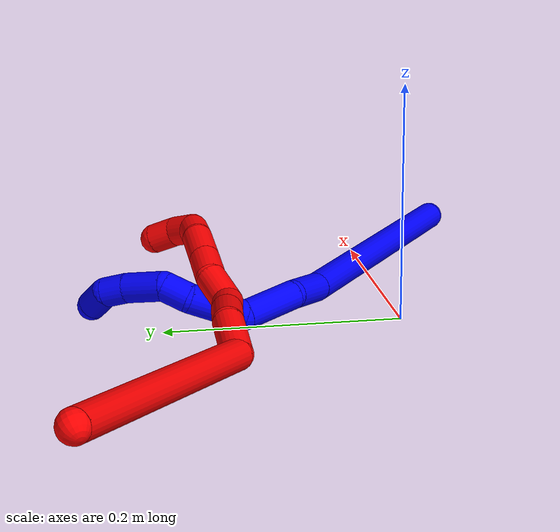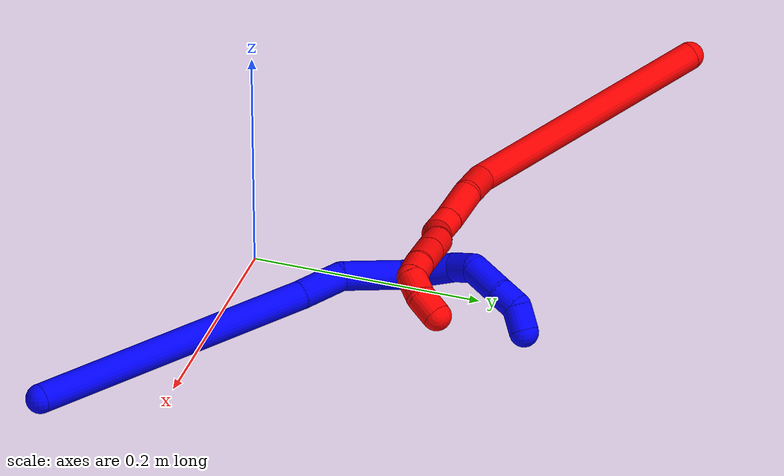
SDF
<sdf version="1.7">
 <world name="default">
  <plugin name="TubeGeneratorPlugin" filename="libtube_generator_plugin.so"/>
  <model name="photoneo_s_sensor">
   <static>1</static>
   <pose>0 0 2 1.57079 1.57079 3.14159</pose>
   <link name="link">
    <inertial><mass>0.1</mass></inertial>
    <sensor name="sensor" type="depth">
     <update_rate>30</update_rate>
     <camera>
      <horizontal_fov>1.22</horizontal_fov>
      <image><width>1920</width><height>1200</height><format>B8G8R8</format></image>
      <clip><near>0.1</near><far>4</far></clip>
      <depth_camera><output>points</output></depth_camera>
     </camera>
     <plugin name="camera_plugin" filename="libgazebo_ros_depth_camera.so">
      <baseline>0.2</baseline>
      <alwaysOn>1</alwaysOn>
      <updateRate>0.0</updateRate>
      <cameraName>camera_ir</cameraName>
      <imageTopicName>/camera/color/image_raw</imageTopicName>
      <cameraInfoTopicName>/camera/color/camera_info</cameraInfoTopicName>
      <depthImageTopicName>/camera/depth/image_raw</depthImageTopicName>
      <depthImageCameraInfoTopicName>/camera/depth/camera_info</depthImageCameraInfoTopicName>
      <pointCloudTopicName>/camera/depth/points</pointCloudTopicName>
      <frameName>fr_optical</frameName>
      <pointCloudCutoff>0.1</pointCloudCutoff>
      <pointCloudCutoffMax>2.0</pointCloudCutoffMax>
      <distortionK1>0</distortionK1>
      <distortionK2>0</distortionK2>
      <distortionK3>0</distortionK3>
      <distortionT1>0</distortionT1>
      <distortionT2>0</distortionT2>
      <CxPrime>0</CxPrime>
      <Cx>0</Cx>
      <Cy>0</Cy>
      <focalLength>0</focalLength>
      <hackBaseline>0</hackBaseline>
     </plugin>
    </sensor>
   </link>
  </model>
  <gravity>0 0 -9.8</gravity>
  <magnetic_field>6e-06 2.3e-05 -4.2e-05</magnetic_field>
  <atmosphere type="adiabatic"/>
  <physics name="default_physics" default="0" type="ode">
   <max_step_size>0.003</max_step_size>
   <real_time_factor>1</real_time_factor>
   <real_time_update_rate>1000</real_time_update_rate>
   <max_contacts>10000</max_contacts>
   <ode>
    <solver>
     <type>quick</type>
     <iters>100</iters>
     <sor>1.3</sor>
     <use_dynamic_moi_rescaling>0</use_dynamic_moi_rescaling>
    </solver>
    <constraints>
     <contact_max_correcting_vel>0</contact_max_correcting_vel>
     <contact_surface_layer>0.001</contact_surface_layer>
     <cfm>0</cfm>
     <erp>0.2</erp>
    </constraints>
   </ode>
  </physics>
  <scene><ambient>0.4 0.4 0.4 1</ambient><background>0.7 0.7 0.7 1</background><shadows>0</shadows></scene>
  <audio><device>default</device></audio>
  <spherical_coordinates>
   <surface_model>EARTH_WGS84</surface_model>
   <latitude_deg>0</latitude_deg>
   <longitude_deg>0</longitude_deg>
   <elevation>0</elevation>
   <heading_deg>0</heading_deg>
  </spherical_coordinates>
  <model name="bin">
   <static>1</static>
   <link name="bottom">
    <collision name="collision-bottom">
     <pose>0 0 -0.01 0 -0 0</pose>
     <geometry><box><size>0.8 0.6 0.02</size></box></geometry>
     <surface>
      <friction><ode><mu>100</mu><mu2>100</mu2></ode></friction>
      <contact><collide_bitmask>65535</collide_bitmask></contact>
     </surface>
    </collision>
   </link>
   <link name="west_wall">
    <collision name="collision-west_wall">
     <pose>-0.41 0 0.1 0 -0 0</pose>
     <geometry><box><size>0.02 0.6 0.2</size></box></geometry>
     <surface>
      <friction><ode><mu>100</mu><mu2>100</mu2></ode></friction>
      <contact><collide_bitmask>65535</collide_bitmask></contact>
     </surface>
    </collision>
   </link>
   <link name="east_wall">
    <collision name="collision-east_wall">
     <pose>0.41 0 0.1 0 -0 0</pose>
     <geometry><box><size>0.02 0.6 0.2</size></box></geometry>
     <surface>
      <friction><ode><mu>100</mu><mu2>100</mu2></ode></friction>
      <contact><collide_bitmask>65535</collide_bitmask></contact>
     </surface>
    </collision>
   </link>
   <link name="south_wall">
    <collision name="collision-south_wall">
     <pose>0 -0.31 0.1 0 -0 0</pose>
     <geometry><box><size>0.8 0.02 0.2</size></box></geometry>
     <surface>
      <friction><ode><mu>100</mu><mu2>100</mu2></ode></friction>
      <contact><collide_bitmask>65535</collide_bitmask></contact>
     </surface>
    </collision>
   </link>
   <link name="north_wall">
    <collision name="collision-north_wall">
     <pose>0 0.31 0.1 0 -0 0</pose>
     <geometry><box><size>0.8 0.02 0.2</size></box></geometry>
     <surface>
      <friction><ode><mu>100</mu><mu2>100</mu2></ode></friction>
      <contact><collide_bitmask>65535</collide_bitmask></contact>
     </surface>
    </collision>
   </link>
  </model>
  <model name="1">
   <static>0</static>
   <link name="1">
    <collision name="collision-cylinder-e_1_1_4">
     <pose>-0.102916 0.076942 -0.003611 -1.6177 -0.928289 0.966376</pose>
     <geometry><cylinder><radius>0.0125</radius><length>0.257098</length></cylinder></geometry>
     <surface>
      <friction><ode><mu>1.16</mu><mu2>1.16</mu2><slip1>0</slip1><slip2>0</slip2></ode></friction>
      <contact><ode><kp>1e+06</kp><kd>1</kd><max_vel>0</max_vel><min_depth>0.001</min_depth></ode></contact>
     </surface>
    </collision>
    <visual name="visual-cylinder-e_1_1_4">
     <pose>-0.102916 0.076942 -0.003611 -1.6177 -0.928289 0.966376</pose>
     <geometry><cylinder><radius>0.0125</radius><length>0.257098</length></cylinder></geometry>
     <material><ambient>0 0 1 1</ambient></material>
    </visual>
    <collision name="collision-cylinder-e_2_4_5">
     <pose>-0.221103 0.167139 -0.005575 -1.44709 -0.852187 0.762661</pose>
     <geometry><cylinder><radius>0.0125</radius><length>0.040576</length></cylinder></geometry>
     <surface>
      <friction><ode><mu>1.16</mu><mu2>1.16</mu2><slip1>0</slip1><slip2>0</slip2></ode></friction>
      <contact><ode><kp>1e+06</kp><kd>1</kd><max_vel>0</max_vel><min_depth>0.001</min_depth></ode></contact>
     </surface>
    </collision>
    <visual name="visual-cylinder-e_2_4_5">
     <pose>-0.221103 0.167139 -0.005575 -1.44709 -0.852187 0.762661</pose>
     <geometry><cylinder><radius>0.0125</radius><length>0.040576</length></cylinder></geometry>
     <material><ambient>0 0 1 1</ambient></material>
    </visual>
    <collision name="collision-cylinder-e_3_5_6">
     <pose>-0.250056 0.202516 -0.009288 -1.80859 -0.541195 0.678102</pose>
     <geometry><cylinder><radius>0.0125</radius><length>0.053116</length></cylinder></geometry>
     <surface>
      <friction><ode><mu>1.16</mu><mu2>1.16</mu2><slip1>0</slip1><slip2>0</slip2></ode></friction>
      <contact><ode><kp>1e+06</kp><kd>1</kd><max_vel>0</max_vel><min_depth>0.001</min_depth></ode></contact>
     </surface>
    </collision>
    <visual name="visual-cylinder-e_3_5_6">
     <pose>-0.250056 0.202516 -0.009288 -1.80859 -0.541195 0.678102</pose>
     <geometry><cylinder><radius>0.0125</radius><length>0.053116</length></cylinder></geometry>
     <material><ambient>0 0 1 1</ambient></material>
    </visual>
    <collision name="collision-cylinder-e_4_6_7">
     <pose>-0.2633 0.248522 -0.008794 -1.33034 0.017766 -0.013936</pose>
     <geometry><cylinder><radius>0.0125</radius><length>0.04919</length></cylinder></geometry>
     <surface>
      <friction><ode><mu>1.16</mu><mu2>1.16</mu2><slip1>0</slip1><slip2>0</slip2></ode></friction>
      <contact><ode><kp>1e+06</kp><kd>1</kd><max_vel>0</max_vel><min_depth>0.001</min_depth></ode></contact>
     </surface>
    </collision>
    <visual name="visual-cylinder-e_4_6_7">
     <pose>-0.2633 0.248522 -0.008794 -1.33034 0.017766 -0.013936</pose>
     <geometry><cylinder><radius>0.0125</radius><length>0.04919</length></cylinder></geometry>
     <material><ambient>0 0 1 1</ambient></material>
    </visual>
    <collision name="collision-cylinder-e_5_7_8">
     <pose>-0.258419 0.282613 -6.7e-05 -1.29665 0.396938 -0.302392</pose>
     <geometry><cylinder><radius>0.0125</radius><length>0.022994</length></cylinder></geometry>
     <surface>
      <friction><ode><mu>1.16</mu><mu2>1.16</mu2><slip1>0</slip1><slip2>0</slip2></ode></friction>
      <contact><ode><kp>1e+06</kp><kd>1</kd><max_vel>0</max_vel><min_depth>0.001</min_depth></ode></contact>
     </surface>
    </collision>
    <visual name="visual-cylinder-e_5_7_8">
     <pose>-0.258419 0.282613 -6.7e-05 -1.29665 0.396938 -0.302392</pose>
     <geometry><cylinder><radius>0.0125</radius><length>0.022994</length></cylinder></geometry>
     <material><ambient>0 0 1 1</ambient></material>
    </visual>
    <collision name="collision-cylinder-e_6_8_9">
     <pose>-0.2451 0.306543 -0.002351 -1.93008 0.54435 -0.766121</pose>
     <geometry><cylinder><radius>0.0125</radius><length>0.034273</length></cylinder></geometry>
     <surface>
      <friction><ode><mu>1.16</mu><mu2>1.16</mu2><slip1>0</slip1><slip2>0</slip2></ode></friction>
      <contact><ode><kp>1e+06</kp><kd>1</kd><max_vel>0</max_vel><min_depth>0.001</min_depth></ode></contact>
     </surface>
    </collision>
    <visual name="visual-cylinder-e_6_8_9">
     <pose>-0.2451 0.306543 -0.002351 -1.93008 0.54435 -0.766121</pose>
     <geometry><cylinder><radius>0.0125</radius><length>0.034273</length></cylinder></geometry>
     <material><ambient>0 0 1 1</ambient></material>
    </visual>
    <collision name="collision-cylinder-e_7_9_10">
     <pose>-0.232054 0.32858 -0.011674 -2.03558 0.421666 -0.6675</pose>
     <geometry><cylinder><radius>0.0125</radius><length>0.020385</length></cylinder></geometry>
     <surface>
      <friction><ode><mu>1.16</mu><mu2>1.16</mu2><slip1>0</slip1><slip2>0</slip2></ode></friction>
      <contact><ode><kp>1e+06</kp><kd>1</kd><max_vel>0</max_vel><min_depth>0.001</min_depth></ode></contact>
     </surface>
    </collision>
    <visual name="visual-cylinder-e_7_9_10">
     <pose>-0.232054 0.32858 -0.011674 -2.03558 0.421666 -0.6675</pose>
     <geometry><cylinder><radius>0.0125</radius><length>0.020385</length></cylinder></geometry>
     <material><ambient>0 0 1 1</ambient></material>
    </visual>
    <collision name="collision-cylinder-e_8_10_2">
     <pose>-0.221879 0.341147 -0.024265 -2.67396 0.566614 -1.77026</pose>
     <geometry><cylinder><radius>0.0125</radius><length>0.022367</length></cylinder></geometry>
     <surface>
      <friction><ode><mu>1.16</mu><mu2>1.16</mu2><slip1>0</slip1><slip2>0</slip2></ode></friction>
      <contact><ode><kp>1e+06</kp><kd>1</kd><max_vel>0</max_vel><min_depth>0.001</min_depth></ode></contact>
     </surface>
    </collision>
    <visual name="visual-cylinder-e_8_10_2">
     <pose>-0.221879 0.341147 -0.024265 -2.67396 0.566614 -1.77026</pose>
     <geometry><cylinder><radius>0.0125</radius><length>0.022367</length></cylinder></geometry>
     <material><ambient>0 0 1 1</ambient></material>
    </visual>
    <collision name="collision-sphere-2">
     <pose>-0.215876 0.3454 -0.032688 0 -0 0</pose>
     <geometry><sphere><radius>0.0125</radius></sphere></geometry>
     <surface>
      <friction><ode><mu>1.16</mu><mu2>1.16</mu2><slip1>0</slip1><slip2>0</slip2></ode></friction>
      <contact><ode><kp>1e+06</kp><kd>1</kd><max_vel>0</max_vel><min_depth>0.001</min_depth></ode></contact>
     </surface>
    </collision>
    <visual name="visual-sphere-2">
     <pose>-0.215876 0.3454 -0.032688 0 -0 0</pose>
     <geometry><sphere><radius>0.0125</radius></sphere></geometry>
     <material><ambient>0 0 1 1</ambient></material>
    </visual>
    <collision name="collision-sphere-10">
     <pose>-0.227882 0.336894 -0.015842 0 -0 0</pose>
     <geometry><sphere><radius>0.0125</radius></sphere></geometry>
     <surface>
      <friction><ode><mu>1.16</mu><mu2>1.16</mu2><slip1>0</slip1><slip2>0</slip2></ode></friction>
      <contact><ode><kp>1e+06</kp><kd>1</kd><max_vel>0</max_vel><min_depth>0.001</min_depth></ode></contact>
     </surface>
    </collision>
    <visual name="visual-sphere-10">
     <pose>-0.227882 0.336894 -0.015842 0 -0 0</pose>
     <geometry><sphere><radius>0.0125</radius></sphere></geometry>
     <material><ambient>0 0 1 1</ambient></material>
    </visual>
    <collision name="collision-sphere-9">
     <pose>-0.236226 0.320267 -0.007505 0 -0 0</pose>
     <geometry><sphere><radius>0.0125</radius></sphere></geometry>
     <surface>
      <friction><ode><mu>1.16</mu><mu2>1.16</mu2><slip1>0</slip1><slip2>0</slip2></ode></friction>
      <contact><ode><kp>1e+06</kp><kd>1</kd><max_vel>0</max_vel><min_depth>0.001</min_depth></ode></contact>
     </surface>
    </collision>
    <visual name="visual-sphere-9">
     <pose>-0.236226 0.320267 -0.007505 0 -0 0</pose>
     <geometry><sphere><radius>0.0125</radius></sphere></geometry>
     <material><ambient>0 0 1 1</ambient></material>
    </visual>
    <collision name="collision-sphere-4">
     <pose>-0.205832 0.153885 -0.007223 0 -0 0</pose>
     <geometry><sphere><radius>0.0125</radius></sphere></geometry>
     <surface>
      <friction><ode><mu>1.16</mu><mu2>1.16</mu2><slip1>0</slip1><slip2>0</slip2></ode></friction>
      <contact><ode><kp>1e+06</kp><kd>1</kd><max_vel>0</max_vel><min_depth>0.001</min_depth></ode></contact>
     </surface>
    </collision>
    <visual name="visual-sphere-4">
     <pose>-0.205832 0.153885 -0.007223 0 -0 0</pose>
     <geometry><sphere><radius>0.0125</radius></sphere></geometry>
     <material><ambient>0 0 1 1</ambient></material>
    </visual>
    <collision name="collision-sphere-1">
     <geometry><sphere><radius>0.0125</radius></sphere></geometry>
     <surface>
      <friction><ode><mu>1.16</mu><mu2>1.16</mu2><slip1>0</slip1><slip2>0</slip2></ode></friction>
      <contact><ode><kp>1e+06</kp><kd>1</kd><max_vel>0</max_vel><min_depth>0.001</min_depth></ode></contact>
     </surface>
    </collision>
    <visual name="visual-sphere-1">
     <geometry><sphere><radius>0.0125</radius></sphere></geometry>
     <material><ambient>0 0 1 1</ambient></material>
    </visual>
    <collision name="collision-sphere-8">
     <pose>-0.253974 0.29282 0.002803 0 -0 0</pose>
     <geometry><sphere><radius>0.0125</radius></sphere></geometry>
     <surface>
      <friction><ode><mu>1.16</mu><mu2>1.16</mu2><slip1>0</slip1><slip2>0</slip2></ode></friction>
      <contact><ode><kp>1e+06</kp><kd>1</kd><max_vel>0</max_vel><min_depth>0.001</min_depth></ode></contact>
     </surface>
    </collision>
    <visual name="visual-sphere-8">
     <pose>-0.253974 0.29282 0.002803 0 -0 0</pose>
     <geometry><sphere><radius>0.0125</radius></sphere></geometry>
     <material><ambient>0 0 1 1</ambient></material>
    </visual>
    <collision name="collision-sphere-5">
     <pose>-0.236374 0.180393 -0.003927 0 -0 0</pose>
     <geometry><sphere><radius>0.0125</radius></sphere></geometry>
     <surface>
      <friction><ode><mu>1.16</mu><mu2>1.16</mu2><slip1>0</slip1><slip2>0</slip2></ode></friction>
      <contact><ode><kp>1e+06</kp><kd>1</kd><max_vel>0</max_vel><min_depth>0.001</min_depth></ode></contact>
     </surface>
    </collision>
    <visual name="visual-sphere-5">
     <pose>-0.236374 0.180393 -0.003927 0 -0 0</pose>
     <geometry><sphere><radius>0.0125</radius></sphere></geometry>
     <material><ambient>0 0 1 1</ambient></material>
    </visual>
    <collision name="collision-sphere-6">
     <pose>-0.263737 0.224638 -0.01465 0 -0 0</pose>
     <geometry><sphere><radius>0.0125</radius></sphere></geometry>
     <surface>
      <friction><ode><mu>1.16</mu><mu2>1.16</mu2><slip1>0</slip1><slip2>0</slip2></ode></friction>
      <contact><ode><kp>1e+06</kp><kd>1</kd><max_vel>0</max_vel><min_depth>0.001</min_depth></ode></contact>
     </surface>
    </collision>
    <visual name="visual-sphere-6">
     <pose>-0.263737 0.224638 -0.01465 0 -0 0</pose>
     <geometry><sphere><radius>0.0125</radius></sphere></geometry>
     <material><ambient>0 0 1 1</ambient></material>
    </visual>
    <collision name="collision-sphere-7">
     <pose>-0.262864 0.272405 -0.002938 0 -0 0</pose>
     <geometry><sphere><radius>0.0125</radius></sphere></geometry>
     <surface>
      <friction><ode><mu>1.16</mu><mu2>1.16</mu2><slip1>0</slip1><slip2>0</slip2></ode></friction>
      <contact><ode><kp>1e+06</kp><kd>1</kd><max_vel>0</max_vel><min_depth>0.001</min_depth></ode></contact>
     </surface>
    </collision>
    <visual name="visual-sphere-7">
     <pose>-0.262864 0.272405 -0.002938 0 -0 0</pose>
     <geometry><sphere><radius>0.0125</radius></sphere></geometry>
     <material><ambient>0 0 1 1</ambient></material>
    </visual>
    <inertial>
     <pose>-0.171401 0.161757 -0.005887 0 -0 0</pose>
     <mass>0.5</mass>
     <inertia>
      <ixx>0.001208</ixx>
      <ixy>0</ixy>
      <ixz>0</ixz>
      <iyy>0.001647</iyy>
      <iyz>0</iyz>
      <izz>0.000258</izz>
     </inertia>
    </inertial>
   </link>
   <pose>0.263336 -0.0923 0.012441 0.126428 -0.055816 0.000705</pose>
  </model>
  <model name="2">
   <static>0</static>
   <link name="2">
    <collision name="collision-cylinder-e_1_1_4">
     <pose>0.089578 0.056808 -0.052549 -2.31727 0.85829 -1.61634</pose>
     <geometry><cylinder><radius>0.0125</radius><length>0.236752</length></cylinder></geometry>
     <surface>
      <friction><ode><mu>1.16</mu><mu2>1.16</mu2><slip1>0</slip1><slip2>0</slip2></ode></friction>
      <contact><ode><kp>1e+06</kp><kd>1</kd><max_vel>0</max_vel><min_depth>0.001</min_depth></ode></contact>
     </surface>
    </collision>
    <visual name="visual-cylinder-e_1_1_4">
     <pose>0.089578 0.056808 -0.052549 -2.31727 0.85829 -1.61634</pose>
     <geometry><cylinder><radius>0.0125</radius><length>0.236752</length></cylinder></geometry>
     <material><ambient>1 0 0 1</ambient></material>
    </visual>
    <collision name="collision-cylinder-e_2_4_5">
     <pose>0.186898 0.11685 -0.125107 -2.98137 0.364866 -2.32069</pose>
     <geometry><cylinder><radius>0.0125</radius><length>0.043393</length></cylinder></geometry>
     <surface>
      <friction><ode><mu>1.16</mu><mu2>1.16</mu2><slip1>0</slip1><slip2>0</slip2></ode></friction>
      <contact><ode><kp>1e+06</kp><kd>1</kd><max_vel>0</max_vel><min_depth>0.001</min_depth></ode></contact>
     </surface>
    </collision>
    <visual name="visual-cylinder-e_2_4_5">
     <pose>0.186898 0.11685 -0.125107 -2.98137 0.364866 -2.32069</pose>
     <geometry><cylinder><radius>0.0125</radius><length>0.043393</length></cylinder></geometry>
     <material><ambient>1 0 0 1</ambient></material>
    </visual>
    <collision name="collision-cylinder-e_3_5_6">
     <pose>0.207327 0.122401 -0.159217 -2.97869 0.726019 -2.71822</pose>
     <geometry><cylinder><radius>0.0125</radius><length>0.038219</length></cylinder></geometry>
     <surface>
      <friction><ode><mu>1.16</mu><mu2>1.16</mu2><slip1>0</slip1><slip2>0</slip2></ode></friction>
      <contact><ode><kp>1e+06</kp><kd>1</kd><max_vel>0</max_vel><min_depth>0.001</min_depth></ode></contact>
     </surface>
    </collision>
    <visual name="visual-cylinder-e_3_5_6">
     <pose>0.207327 0.122401 -0.159217 -2.97869 0.726019 -2.71822</pose>
     <geometry><cylinder><radius>0.0125</radius><length>0.038219</length></cylinder></geometry>
     <material><ambient>1 0 0 1</ambient></material>
    </visual>
    <collision name="collision-cylinder-e_4_6_7">
     <pose>0.22722 0.12675 -0.181224 -2.8902 0.72326 -2.49678</pose>
     <geometry><cylinder><radius>0.0125</radius><length>0.021777</length></cylinder></geometry>
     <surface>
      <friction><ode><mu>1.16</mu><mu2>1.16</mu2><slip1>0</slip1><slip2>0</slip2></ode></friction>
      <contact><ode><kp>1e+06</kp><kd>1</kd><max_vel>0</max_vel><min_depth>0.001</min_depth></ode></contact>
     </surface>
    </collision>
    <visual name="visual-cylinder-e_4_6_7">
     <pose>0.22722 0.12675 -0.181224 -2.8902 0.72326 -2.49678</pose>
     <geometry><cylinder><radius>0.0125</radius><length>0.021777</length></cylinder></geometry>
     <material><ambient>1 0 0 1</ambient></material>
    </visual>
    <collision name="collision-cylinder-e_5_7_8">
     <pose>0.236002 0.127769 -0.204973 3.07786 0.098956 1.99765</pose>
     <geometry><cylinder><radius>0.0125</radius><length>0.031906</length></cylinder></geometry>
     <surface>
      <friction><ode><mu>1.16</mu><mu2>1.16</mu2><slip1>0</slip1><slip2>0</slip2></ode></friction>
      <contact><ode><kp>1e+06</kp><kd>1</kd><max_vel>0</max_vel><min_depth>0.001</min_depth></ode></contact>
     </surface>
    </collision>
    <visual name="visual-cylinder-e_5_7_8">
     <pose>0.236002 0.127769 -0.204973 3.07786 0.098956 1.99765</pose>
     <geometry><cylinder><radius>0.0125</radius><length>0.031906</length></cylinder></geometry>
     <material><ambient>1 0 0 1</ambient></material>
    </visual>
    <collision name="collision-cylinder-e_6_8_9">
     <pose>0.242526 0.128493 -0.234019 -3.0109 0.355726 -2.44333</pose>
     <geometry><cylinder><radius>0.0125</radius><length>0.028413</length></cylinder></geometry>
     <surface>
      <friction><ode><mu>1.16</mu><mu2>1.16</mu2><slip1>0</slip1><slip2>0</slip2></ode></friction>
      <contact><ode><kp>1e+06</kp><kd>1</kd><max_vel>0</max_vel><min_depth>0.001</min_depth></ode></contact>
     </surface>
    </collision>
    <visual name="visual-cylinder-e_6_8_9">
     <pose>0.242526 0.128493 -0.234019 -3.0109 0.355726 -2.44333</pose>
     <geometry><cylinder><radius>0.0125</radius><length>0.028413</length></cylinder></geometry>
     <material><ambient>1 0 0 1</ambient></material>
    </visual>
    <collision name="collision-cylinder-e_7_9_10">
     <pose>0.253413 0.132108 -0.263171 -3.02429 0.354248 -2.50764</pose>
     <geometry><cylinder><radius>0.0125</radius><length>0.034242</length></cylinder></geometry>
     <surface>
      <friction><ode><mu>1.16</mu><mu2>1.16</mu2><slip1>0</slip1><slip2>0</slip2></ode></friction>
      <contact><ode><kp>1e+06</kp><kd>1</kd><max_vel>0</max_vel><min_depth>0.001</min_depth></ode></contact>
     </surface>
    </collision>
    <visual name="visual-cylinder-e_7_9_10">
     <pose>0.253413 0.132108 -0.263171 -3.02429 0.354248 -2.50764</pose>
     <geometry><cylinder><radius>0.0125</radius><length>0.034242</length></cylinder></geometry>
     <material><ambient>1 0 0 1</ambient></material>
    </visual>
    <collision name="collision-cylinder-e_8_10_11">
     <pose>0.264974 0.134556 -0.288531 -3.08126 0.537639 -2.92341</pose>
     <geometry><cylinder><radius>0.0125</radius><length>0.021957</length></cylinder></geometry>
     <surface>
      <friction><ode><mu>1.16</mu><mu2>1.16</mu2><slip1>0</slip1><slip2>0</slip2></ode></friction>
      <contact><ode><kp>1e+06</kp><kd>1</kd><max_vel>0</max_vel><min_depth>0.001</min_depth></ode></contact>
     </surface>
    </collision>
    <visual name="visual-cylinder-e_8_10_11">
     <pose>0.264974 0.134556 -0.288531 -3.08126 0.537639 -2.92341</pose>
     <geometry><cylinder><radius>0.0125</radius><length>0.021957</length></cylinder></geometry>
     <material><ambient>1 0 0 1</ambient></material>
    </visual>
    <collision name="collision-cylinder-e_9_11_12">
     <pose>0.275435 0.128292 -0.30473 2.3528 0.46565 1.03574</pose>
     <geometry><cylinder><radius>0.0125</radius><length>0.021555</length></cylinder></geometry>
     <surface>
      <friction><ode><mu>1.16</mu><mu2>1.16</mu2><slip1>0</slip1><slip2>0</slip2></ode></friction>
      <contact><ode><kp>1e+06</kp><kd>1</kd><max_vel>0</max_vel><min_depth>0.001</min_depth></ode></contact>
     </surface>
    </collision>
    <visual name="visual-cylinder-e_9_11_12">
     <pose>0.275435 0.128292 -0.30473 2.3528 0.46565 1.03574</pose>
     <geometry><cylinder><radius>0.0125</radius><length>0.021555</length></cylinder></geometry>
     <material><ambient>1 0 0 1</ambient></material>
    </visual>
    <collision name="collision-cylinder-e_10_12_2">
     <pose>0.283749 0.112173 -0.316027 2.02298 0.324646 0.511754</pose>
     <geometry><cylinder><radius>0.0125</radius><length>0.021785</length></cylinder></geometry>
     <surface>
      <friction><ode><mu>1.16</mu><mu2>1.16</mu2><slip1>0</slip1><slip2>0</slip2></ode></friction>
      <contact><ode><kp>1e+06</kp><kd>1</kd><max_vel>0</max_vel><min_depth>0.001</min_depth></ode></contact>
     </surface>
    </collision>
    <visual name="visual-cylinder-e_10_12_2">
     <pose>0.283749 0.112173 -0.316027 2.02298 0.324646 0.511754</pose>
     <geometry><cylinder><radius>0.0125</radius><length>0.021785</length></cylinder></geometry>
     <material><ambient>1 0 0 1</ambient></material>
    </visual>
    <collision name="collision-sphere-2">
     <pose>0.287223 0.102887 -0.320538 0 -0 0</pose>
     <geometry><sphere><radius>0.0125</radius></sphere></geometry>
     <surface>
      <friction><ode><mu>1.16</mu><mu2>1.16</mu2><slip1>0</slip1><slip2>0</slip2></ode></friction>
      <contact><ode><kp>1e+06</kp><kd>1</kd><max_vel>0</max_vel><min_depth>0.001</min_depth></ode></contact>
     </surface>
    </collision>
    <visual name="visual-sphere-2">
     <pose>0.287223 0.102887 -0.320538 0 -0 0</pose>
     <geometry><sphere><radius>0.0125</radius></sphere></geometry>
     <material><ambient>1 0 0 1</ambient></material>
    </visual>
    <collision name="collision-sphere-12">
     <pose>0.280275 0.121459 -0.311517 0 -0 0</pose>
     <geometry><sphere><radius>0.0125</radius></sphere></geometry>
     <surface>
      <friction><ode><mu>1.16</mu><mu2>1.16</mu2><slip1>0</slip1><slip2>0</slip2></ode></friction>
      <contact><ode><kp>1e+06</kp><kd>1</kd><max_vel>0</max_vel><min_depth>0.001</min_depth></ode></contact>
     </surface>
    </collision>
    <visual name="visual-sphere-12">
     <pose>0.280275 0.121459 -0.311517 0 -0 0</pose>
     <geometry><sphere><radius>0.0125</radius></sphere></geometry>
     <material><ambient>1 0 0 1</ambient></material>
    </visual>
    <collision name="collision-sphere-11">
     <pose>0.270596 0.135125 -0.297944 0 -0 0</pose>
     <geometry><sphere><radius>0.0125</radius></sphere></geometry>
     <surface>
      <friction><ode><mu>1.16</mu><mu2>1.16</mu2><slip1>0</slip1><slip2>0</slip2></ode></friction>
      <contact><ode><kp>1e+06</kp><kd>1</kd><max_vel>0</max_vel><min_depth>0.001</min_depth></ode></contact>
     </surface>
    </collision>
    <visual name="visual-sphere-11">
     <pose>0.270596 0.135125 -0.297944 0 -0 0</pose>
     <geometry><sphere><radius>0.0125</radius></sphere></geometry>
     <material><ambient>1 0 0 1</ambient></material>
    </visual>
    <collision name="collision-sphere-10">
     <pose>0.259352 0.133988 -0.279119 0 -0 0</pose>
     <geometry><sphere><radius>0.0125</radius></sphere></geometry>
     <surface>
      <friction><ode><mu>1.16</mu><mu2>1.16</mu2><slip1>0</slip1><slip2>0</slip2></ode></friction>
      <contact><ode><kp>1e+06</kp><kd>1</kd><max_vel>0</max_vel><min_depth>0.001</min_depth></ode></contact>
     </surface>
    </collision>
    <visual name="visual-sphere-10">
     <pose>0.259352 0.133988 -0.279119 0 -0 0</pose>
     <geometry><sphere><radius>0.0125</radius></sphere></geometry>
     <material><ambient>1 0 0 1</ambient></material>
    </visual>
    <collision name="collision-sphere-9">
     <pose>0.247473 0.130229 -0.247223 0 -0 0</pose>
     <geometry><sphere><radius>0.0125</radius></sphere></geometry>
     <surface>
      <friction><ode><mu>1.16</mu><mu2>1.16</mu2><slip1>0</slip1><slip2>0</slip2></ode></friction>
      <contact><ode><kp>1e+06</kp><kd>1</kd><max_vel>0</max_vel><min_depth>0.001</min_depth></ode></contact>
     </surface>
    </collision>
    <visual name="visual-sphere-9">
     <pose>0.247473 0.130229 -0.247223 0 -0 0</pose>
     <geometry><sphere><radius>0.0125</radius></sphere></geometry>
     <material><ambient>1 0 0 1</ambient></material>
    </visual>
    <collision name="collision-sphere-4">
     <pose>0.179156 0.113617 -0.105099 0 -0 0</pose>
     <geometry><sphere><radius>0.0125</radius></sphere></geometry>
     <surface>
      <friction><ode><mu>1.16</mu><mu2>1.16</mu2><slip1>0</slip1><slip2>0</slip2></ode></friction>
      <contact><ode><kp>1e+06</kp><kd>1</kd><max_vel>0</max_vel><min_depth>0.001</min_depth></ode></contact>
     </surface>
    </collision>
    <visual name="visual-sphere-4">
     <pose>0.179156 0.113617 -0.105099 0 -0 0</pose>
     <geometry><sphere><radius>0.0125</radius></sphere></geometry>
     <material><ambient>1 0 0 1</ambient></material>
    </visual>
    <collision name="collision-sphere-1">
     <geometry><sphere><radius>0.0125</radius></sphere></geometry>
     <surface>
      <friction><ode><mu>1.16</mu><mu2>1.16</mu2><slip1>0</slip1><slip2>0</slip2></ode></friction>
      <contact><ode><kp>1e+06</kp><kd>1</kd><max_vel>0</max_vel><min_depth>0.001</min_depth></ode></contact>
     </surface>
    </collision>
    <visual name="visual-sphere-1">
     <geometry><sphere><radius>0.0125</radius></sphere></geometry>
     <material><ambient>1 0 0 1</ambient></material>
    </visual>
    <collision name="collision-sphere-8">
     <pose>0.237578 0.126758 -0.220816 0 -0 0</pose>
     <geometry><sphere><radius>0.0125</radius></sphere></geometry>
     <surface>
      <friction><ode><mu>1.16</mu><mu2>1.16</mu2><slip1>0</slip1><slip2>0</slip2></ode></friction>
      <contact><ode><kp>1e+06</kp><kd>1</kd><max_vel>0</max_vel><min_depth>0.001</min_depth></ode></contact>
     </surface>
    </collision>
    <visual name="visual-sphere-8">
     <pose>0.237578 0.126758 -0.220816 0 -0 0</pose>
     <geometry><sphere><radius>0.0125</radius></sphere></geometry>
     <material><ambient>1 0 0 1</ambient></material>
    </visual>
    <collision name="collision-sphere-5">
     <pose>0.19464 0.120084 -0.145116 0 -0 0</pose>
     <geometry><sphere><radius>0.0125</radius></sphere></geometry>
     <surface>
      <friction><ode><mu>1.16</mu><mu2>1.16</mu2><slip1>0</slip1><slip2>0</slip2></ode></friction>
      <contact><ode><kp>1e+06</kp><kd>1</kd><max_vel>0</max_vel><min_depth>0.001</min_depth></ode></contact>
     </surface>
    </collision>
    <visual name="visual-sphere-5">
     <pose>0.19464 0.120084 -0.145116 0 -0 0</pose>
     <geometry><sphere><radius>0.0125</radius></sphere></geometry>
     <material><ambient>1 0 0 1</ambient></material>
    </visual>
    <collision name="collision-sphere-6">
     <pose>0.220013 0.124719 -0.173318 0 -0 0</pose>
     <geometry><sphere><radius>0.0125</radius></sphere></geometry>
     <surface>
      <friction><ode><mu>1.16</mu><mu2>1.16</mu2><slip1>0</slip1><slip2>0</slip2></ode></friction>
      <contact><ode><kp>1e+06</kp><kd>1</kd><max_vel>0</max_vel><min_depth>0.001</min_depth></ode></contact>
     </surface>
    </collision>
    <visual name="visual-sphere-6">
     <pose>0.220013 0.124719 -0.173318 0 -0 0</pose>
     <geometry><sphere><radius>0.0125</radius></sphere></geometry>
     <material><ambient>1 0 0 1</ambient></material>
    </visual>
    <collision name="collision-sphere-7">
     <pose>0.234426 0.12878 -0.18913 0 -0 0</pose>
     <geometry><sphere><radius>0.0125</radius></sphere></geometry>
     <surface>
      <friction><ode><mu>1.16</mu><mu2>1.16</mu2><slip1>0</slip1><slip2>0</slip2></ode></friction>
      <contact><ode><kp>1e+06</kp><kd>1</kd><max_vel>0</max_vel><min_depth>0.001</min_depth></ode></contact>
     </surface>
    </collision>
    <visual name="visual-sphere-7">
     <pose>0.234426 0.12878 -0.18913 0 -0 0</pose>
     <geometry><sphere><radius>0.0125</radius></sphere></geometry>
     <material><ambient>1 0 0 1</ambient></material>
    </visual>
    <inertial>
     <pose>0.16645 0.092746 -0.139782 0 -0 0</pose>
     <mass>0.5</mass>
     <inertia>
      <ixx>-0.000764</ixx>
      <ixy>0</ixy>
      <ixz>0</ixz>
      <iyy>-5.2e-05</iyy>
      <iyz>0</iyz>
      <izz>-0.001418</izz>
     </inertia>
    </inertial>
   </link>
   <pose>-0.33156 0.287668 0.062081 2.43899 0.851366 -0.50538</pose>
  </model>
 </world>
</sdf>
